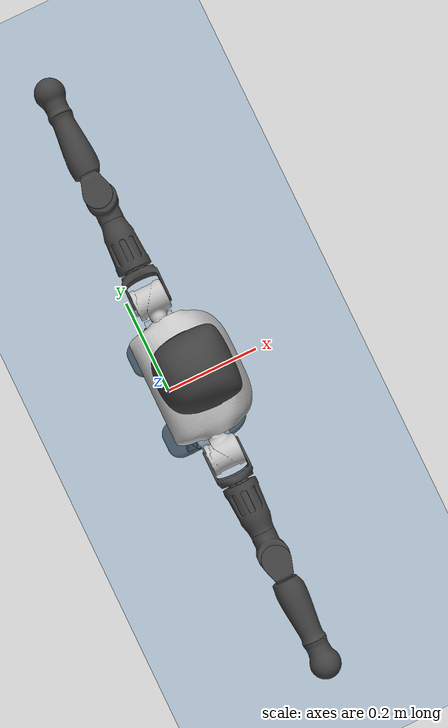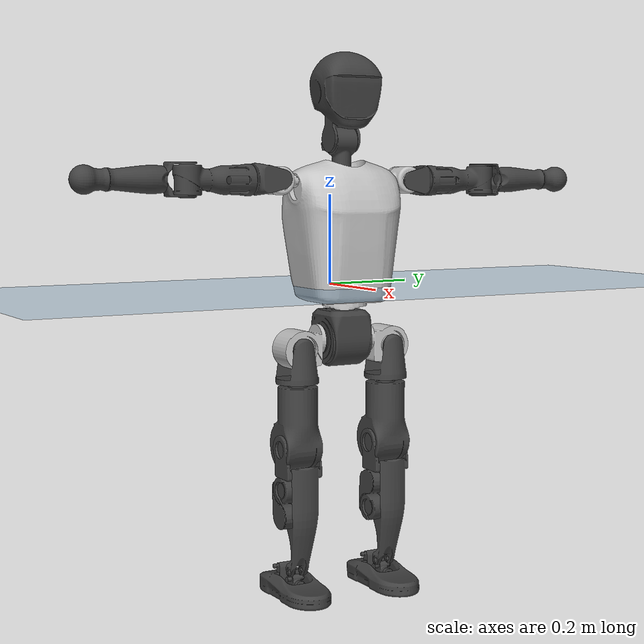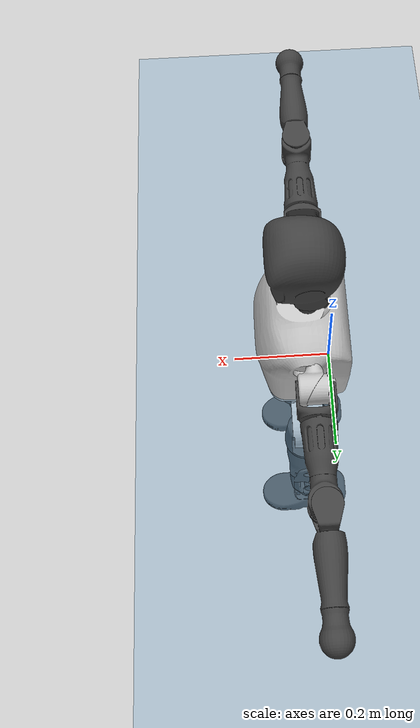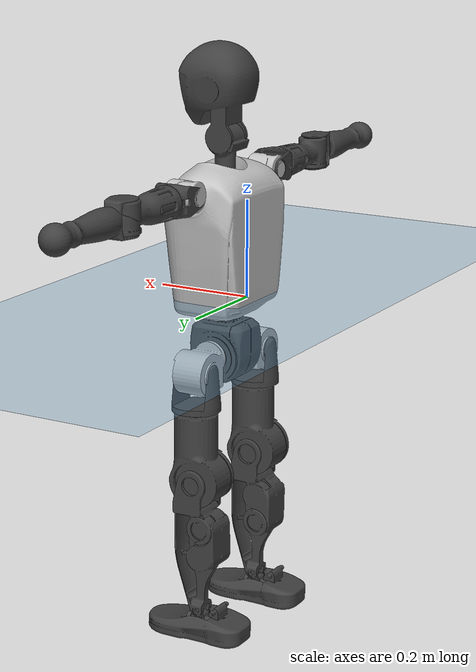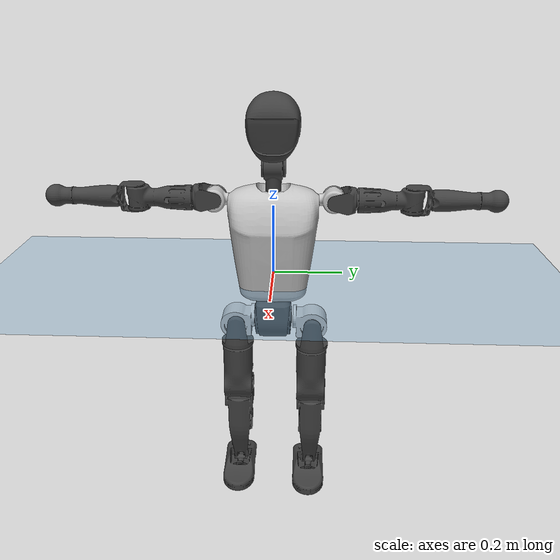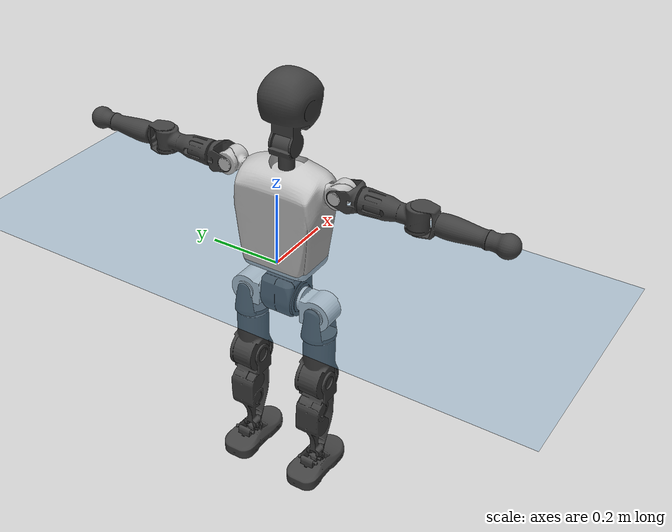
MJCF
<mujoco model="T1">
  <compiler angle="radian" assetdir="assets" balanceinertia="true" inertiafromgeom="false"/>

  <option timestep="0.005" density="1.2" viscosity="2e-05"/>

  <size nkey="1"/>

  <visual>
    <quality shadowsize="8192"/>
    <map shadowclip="0.5"/>
  </visual>

  <default>
    <default class="/">
      <joint armature="0.01" damping="0.01" frictionloss="0.1"/>
      <geom contype="0" conaffinity="0" group="1" solref="-1000 -80"/>
      <site size="0.01 0.005 0.005" group="5"/>
      <general forcelimited="true" biastype="affine" gainprm="25" biasprm="0 -25 -0.6"/>
      <default class="t1">
        <geom rgba="0.25 0.25 0.25 1"/>
        <default class="visual">
          <geom type="mesh" group="2"/>
        </default>
        <default class="collision">
          <geom group="3"/>
        </default>
        <default class="foot">
          <geom size="0.1115 0.05 0.015" type="box" condim="6" group="4" priority="1" solimp="0.015 1 0.015"/>
        </default>
        <default class="reward_collision_sphere">
          <geom group="5" rgba="1 0 0 1"/>
        </default>
      </default>
    </default>
  </default>

  <asset>
    <texture type="skybox" colorspace="auto" name="//unnamed_texture_0" builtin="gradient" rgb1="0.95 0.95 0.95" rgb2="0.95 0.95 0.95" width="100" height="600"/>
    <texture type="2d" colorspace="auto" name="texplane" builtin="checker" rgb1="0.345 0.575 0.748" rgb2="0.345 0.575 0.748" markrgb="1 1 1" width="512" height="512"/>
    <material name="MatPlane" class="/" texture="texplane" texuniform="true" texrepeat="2 2" specular="0.9"/>
    <mesh name="Trunk" class="/" file="Trunk.stl"/>
    <mesh name="H1" class="/" file="H1.stl"/>
    <mesh name="H2" class="/" file="H2.stl"/>
    <mesh name="AL1" class="/" file="AL1.stl"/>
    <mesh name="AL2" class="/" file="AL2.stl"/>
    <mesh name="AL3" class="/" file="AL3.stl"/>
    <mesh name="left_hand_link" class="/" file="left_hand_link.stl"/>
    <mesh name="AR1" class="/" file="AR1.stl"/>
    <mesh name="AR2" class="/" file="AR2.stl"/>
    <mesh name="AR3" class="/" file="AR3.stl"/>
    <mesh name="right_hand_link" class="/" file="right_hand_link.stl"/>
    <mesh name="Waist" class="/" file="Waist.stl"/>
    <mesh name="Hip_Pitch_Left" class="/" file="Hip_Pitch_Left.stl"/>
    <mesh name="Hip_Roll_Left" class="/" file="Hip_Roll_Left.stl"/>
    <mesh name="Hip_Yaw_Left" class="/" file="Hip_Yaw_Left.stl"/>
    <mesh name="Shank_Left" class="/" file="Shank_Left.stl"/>
    <mesh name="Ankle_Cross_Left" class="/" file="Ankle_Cross_Left.stl"/>
    <mesh name="left_foot_link" class="/" file="left_foot_link.stl"/>
    <mesh name="Hip_Pitch_Right" class="/" file="Hip_Pitch_Right.stl"/>
    <mesh name="Hip_Roll_Right" class="/" file="Hip_Roll_Right.stl"/>
    <mesh name="Hip_Yaw_Right" class="/" file="Hip_Yaw_Right.stl"/>
    <mesh name="Shank_Right" class="/" file="Shank_Right.stl"/>
    <mesh name="Ankle_Cross_Right" class="/" file="Ankle_Cross_Right.stl"/>
    <mesh name="right_foot_link" class="/" file="right_foot_link.stl"/>
  </asset>

  <worldbody>
    <geom name="floor" class="/" size="100 100 0.125" type="plane" group="0" material="MatPlane"/>
    <light name="toplight_shadow" class="/" pos="0 0 5" dir="0.0990148 0.0990148 -0.990148" type="directional" ambient="0.04 0.04 0.04" diffuse="0.55 0.55 0.55" specular="0.12 0.12 0.12"/>
    <light name="toplight_fill" class="/" pos="0 0 5" dir="0.0990148 0.0990148 -0.990148" type="directional" castshadow="false" ambient="0.04 0.04 0.04" diffuse="0.3 0.3 0.3" specular="0.08 0.08 0.08"/>
    <body name="trunk" childclass="t1" pos="-0.000525304 0.00283874 -0.00155702" quat="1 -7.28293e-05 0.00038963 -0.000335633">
      <inertial pos="0.0409192 -0.000236665 0.110165" quat="0.999957 -4.06774e-05 -0.00925351 0.000297325" mass="10.2062" diaginertia="0.0218206 0.102908 0.0693128"/>
      <joint name="//unnamed_joint_0" type="free" armature="0" damping="0" frictionloss="0"/>
      <geom name="//unnamed_geom_1" class="visual" rgba="0.76 0.76 0.76 1" mesh="Trunk"/>
      <geom name="//unnamed_geom_2" class="collision" size="0.071812 0.0957493 0.143624" pos="0.045512 0 0.126776" type="box"/>
      <geom name="//unnamed_geom_3" class="reward_collision_sphere" size="0.110112" pos="0.045512 0 0.105647"/>
      <geom name="//unnamed_geom_4" class="reward_collision_sphere" size="0.0143624" pos="0.045512 0.0898856 0"/>
      <geom name="//unnamed_geom_5" class="reward_collision_sphere" size="0.0143624" pos="0.045512 -0.0898856 0"/>
      <geom name="//unnamed_geom_6" class="reward_collision_sphere" size="0.0143624" pos="0.045512 0.11315 0.190165"/>
      <geom name="//unnamed_geom_7" class="reward_collision_sphere" size="0.0143624" pos="0.045512 -0.11315 0.190165"/>
      <site name="imu" pos="-0.00828626 0.00475905 -0.000956626" size="0.00957493"/>
      <camera name="track" pos="0 -2.11495 0" quat="0.707107 0.707107 0 0" mode="trackcom"/>
      <camera name="ego_camera" pos="0.0925411 0 0.443717" quat="-0.5 -0.5 0.5 0.5"/>
      <body name="H1" pos="0.0490834 -0.000276022 0.258397" quat="1 0.000123748 -0.000931138 -0.000334214">
        <inertial pos="0.00115723 0.000776088 0.0615681" quat="0.761321 -0.0153374 0.00429574 0.648179" mass="0.403547" diaginertia="6.27322e-05 0.000303583 0.000190434"/>
        <joint name="AAHead_yaw" pos="0 0 0" axis="-0.00413813 0.00297374 0.999987" stiffness="0.000902311" range="-1.58417 1.54713" armature="0.00910607" damping="0" frictionloss="0.105726"/>
        <geom name="//unnamed_geom_8" class="visual" mesh="H1"/>
        <body name="H2" pos="-0.00260703 0.000886481 0.0671747" quat="1 -0.000163761 2.82861e-05 0.000652468">
          <inertial pos="0.00480062 0.00070151 0.103778" quat="0.98833 0.106806 -0.0752251 -0.0783379" mass="0.548683" diaginertia="0.000496026 0.00247318 0.00228451"/>
          <joint name="Head_pitch" pos="0 0 0" axis="0.00491428 -0.999959 -0.00764528" range="-1.27774 0.381415" armature="0.0105871" damping="0.0133942" frictionloss="0.101908"/>
          <geom name="//unnamed_geom_9" class="visual" mesh="H2"/>
          <geom name="//unnamed_geom_10" class="collision" size="0.0765995" pos="0.00758533 0 0.116212"/>
          <geom name="//unnamed_geom_11" class="reward_collision_sphere" size="0.0861744" pos="0.0151707 0 0.105647"/>
        </body>
      </body>
      <body name="AL1" pos="0.0456806 0.115633 0.234419" quat="1 0.000356332 0.000186416 -0.000214418">
        <inertial pos="-0.00178145 0.0449832 -0.00289652" quat="0.493942 0.495206 -0.512742 0.497882" mass="0.44969" diaginertia="0.000336009 0.00166313 0.000376229"/>
        <joint name="Left_Shoulder_Pitch" pos="0 0 0" axis="-0.00147791 0.999989 0.00434559" range="-3.3048 1.21962" armature="0.00921467" damping="0.0234461" frictionloss="0.0849711"/>
        <geom name="//unnamed_geom_12" class="visual" rgba="0.76 0.76 0.76 1" mesh="AL1"/>
        <body name="AL2" pos="-0.000155142 0.0496002 -0.0014953" quat="1 0.00028635 -0.000807371 -0.000163422">
          <inertial pos="0.00100739 0.0406026 -0.00221601" quat="0.479851 0.510411 -0.488567 0.52012" mass="0.144968" diaginertia="9.9408e-05 0.000440337 0.000235082"/>
          <joint name="Left_Shoulder_Roll" pos="0 0 0" axis="-0.999983 0.0055132 -0.00167378" range="-1.56877 1.7259" armature="0.00934968" damping="0.00335131" frictionloss="0.0881302"/>
          <geom name="//unnamed_geom_13" class="visual" mesh="AL2"/>
          <body name="AL3" pos="-0.00100128 0.061657 -0.00010989" quat="1 0.000410459 0.000153669 -0.000228386">
            <inertial pos="-0.00068237 0.0901398 0.001988" quat="0.705801 0.708407 0.000118756 -0.00209557" mass="0.906304" diaginertia="0.00333165 0.0171451 0.000789748"/>
            <joint name="Left_Elbow_Pitch" pos="0 0 0" axis="-0.00547962 -0.999953 0.00799514" range="-2.27428 2.26509" armature="0.00904304" damping="0.0107926" frictionloss="0.106727"/>
            <geom name="//unnamed_geom_14" class="visual" mesh="AL3"/>
            <geom name="//unnamed_geom_15" class="collision" size="0.0287248 0.071812" pos="0 0.0528739 0" quat="0.707105 0.707108 0 0" type="cylinder"/>
            <geom name="//unnamed_geom_16" class="reward_collision_sphere" size="0.0344698"/>
            <body name="left_hand_link" pos="-0.00254723 0.154362 0.000994259" quat="1 0.000246571 0.00064736 -0.00065637">
              <inertial pos="5.75954e-05 0.11837 0.00341304" quat="0.708701 0.7055 0.0021688 0.00267782" mass="0.282735" diaginertia="0.00204343 0.011288 0.000286492"/>
              <joint name="Left_Elbow_Yaw" pos="0 0 0" axis="-0.00561724 0.00973515 0.999937" range="-2.41676 -0.0159838" armature="0.00938985" damping="0.00786415" frictionloss="0.109317"/>
              <geom name="//unnamed_geom_17" class="visual" mesh="left_hand_link"/>
              <geom name="//unnamed_geom_18" class="collision" size="0.0287248 0.0837807" pos="0 0.137472 0" quat="0.707105 0.707108 0 0" type="cylinder"/>
              <geom name="//unnamed_geom_19" class="reward_collision_sphere" size="0.0478747"/>
              <geom name="//unnamed_geom_20" class="reward_collision_sphere" size="0.0335123" pos="0 0.116323 0"/>
              <geom name="//unnamed_geom_21" class="reward_collision_sphere" size="0.0335123" pos="0 0.227358 0"/>
            </body>
          </body>
        </body>
      </body>
      <body name="AR1" pos="0.04622 -0.112991 0.234034" quat="0.999999 -0.000423776 0.00107299 -0.000280564">
        <inertial pos="-0.00121151 -0.0503156 0.000644185" quat="0.494901 0.503342 -0.502169 0.499545" mass="0.458673" diaginertia="0.000324734 0.0016786 0.000376032"/>
        <joint name="Right_Shoulder_Pitch" pos="0 0 0" axis="-0.00176155 -0.999935 0.0112412" range="-1.227 3.3657" armature="0.0094488" damping="0" frictionloss="0.091408"/>
        <geom name="//unnamed_geom_22" class="visual" rgba="0.76 0.76 0.76 1" mesh="AR1"/>
        <body name="AR2" pos="-0.00109526 -0.0471918 0.003106" quat="0.999999 0.000201713 0.000856066 0.00122732">
          <inertial pos="0.000525336 -0.0398501 0.00317567" quat="0.513725 0.488245 -0.509828 0.487626" mass="0.137156" diaginertia="0.000102417 0.00046091 0.000227072"/>
          <joint name="Right_Shoulder_Roll" pos="0 0 0" axis="-0.999877 -0.0130639 -0.00869108" stiffness="0.00319944" range="-1.71644 1.58298" armature="0.00981346" damping="0.020548" frictionloss="0.106216"/>
          <geom name="//unnamed_geom_23" class="visual" mesh="AR2"/>
          <body name="AR3" pos="0.000894967 -0.0614466 -0.00174894" quat="1 -0.000145296 0.000312594 -0.000410505">
            <inertial pos="-0.00146128 -0.0909391 0.000672568" quat="0.698491 0.715604 0.00393972 0.00236998" mass="0.905086" diaginertia="0.00309769 0.0162717 0.000819589"/>
            <joint name="Right_Elbow_Pitch" pos="0 0 0" axis="0.010808 0.999911 0.00776721" range="-2.27378 2.21074" armature="0.00819852" damping="0.0111762" frictionloss="0.100226"/>
            <geom name="//unnamed_geom_24" class="visual" mesh="AR3"/>
            <geom name="//unnamed_geom_25" class="collision" size="0.0287248 0.071812" pos="0 -0.0528739 0" quat="0.707105 0.707108 0 0" type="cylinder"/>
            <geom name="//unnamed_geom_26" class="reward_collision_sphere" size="0.0344698"/>
            <body name="right_hand_link" pos="4.95746e-05 -0.15568 0.00148587" quat="1 1.04421e-07 4.25692e-06 3.3684e-06">
              <inertial pos="-0.00279809 -0.11302 -0.000485478" quat="0.710468 0.703722 -0.00108594 0.0031894" mass="0.277858" diaginertia="0.00203185 0.0101278 0.000282638"/>
              <joint name="Right_Elbow_Yaw" pos="0 0 0" axis="-0.00222573 -0.00381903 0.99999" range="0.0191444 2.43403" armature="0.00880773" damping="0" frictionloss="0.0906638"/>
              <geom name="//unnamed_geom_27" class="visual" mesh="right_hand_link"/>
              <geom name="//unnamed_geom_28" class="collision" size="0.0287248 0.0837807" pos="0 -0.137472 0" quat="0.707105 0.707108 0 0" type="cylinder"/>
              <geom name="//unnamed_geom_29" class="reward_collision_sphere" size="0.0478747"/>
              <geom name="//unnamed_geom_30" class="reward_collision_sphere" size="0.0335123" pos="0 -0.116323 0"/>
              <geom name="//unnamed_geom_31" class="reward_collision_sphere" size="0.0335123" pos="0 -0.227358 0"/>
            </body>
          </body>
        </body>
      </body>
      <body name="Waist" pos="0.0487447 -0.000688075 -0.119278" quat="1 0.000372259 4.17965e-05 0.00032577">
        <inertial pos="0.00503234 -0.00127404 0.0101469" quat="0.983978 0.000978837 -0.178277 0.00161515" mass="2.26419" diaginertia="0.00130456 0.00719316 0.00604237"/>
        <joint name="Waist" pos="0 0 0" axis="-0.00294019 0.00205656 0.999994" range="-1.62457 1.62463" armature="0.00945603" damping="0.00120042" frictionloss="0.0935334"/>
        <geom name="//unnamed_geom_32" class="visual" mesh="Waist"/>
        <body name="Hip_Pitch_Left" pos="0.000743588 0.113167 0.00210243" quat="1 0.000337145 3.20831e-05 -0.00058498">
          <inertial pos="-0.00178261 -0.00816629 -0.0203171" quat="0.975439 0.219634 0.0167172 -0.00105745" mass="0.914766" diaginertia="0.000468433 0.00190145 0.00164289"/>
          <joint name="Left_Hip_Pitch" pos="0 0 0" axis="-0.00800533 0.999942 0.00720983" range="-1.75003 1.56477" armature="0.00947079" damping="0" frictionloss="0.0845592"/>
          <geom name="//unnamed_geom_33" class="visual" rgba="0.76 0.76 0.76 1" mesh="Hip_Pitch_Left"/>
          <body name="Hip_Roll_Left" pos="0.00374309 0.00125531 -0.0203928" quat="1 9.79999e-05 0.000158964 -4.73668e-05">
            <inertial pos="0.0022142 6.14218e-05 -0.0563988" quat="0.711739 -0.0159858 -0.00404216 0.702251" mass="0.354071" diaginertia="0.000452142 0.00214818 0.000696221"/>
            <joint name="Left_Hip_Roll" pos="0 0 0" axis="-0.999983 0.00478423 0.00323639" range="-1.51186 0.198701" armature="0.00964617" damping="0.02346" frictionloss="0.0824626"/>
            <geom name="//unnamed_geom_34" class="visual" mesh="Hip_Roll_Left"/>
            <geom name="//unnamed_geom_35" class="reward_collision_sphere" size="0.0526621"/>
            <body name="Hip_Yaw_Left" pos="-0.0012144 -0.000394968 -0.0860031" quat="1 5.07094e-05 1.57143e-05 1.19365e-05">
              <inertial pos="-0.00421061 -0.000969303 -0.0962652" quat="0.698927 -0.0421612 -0.0321528 0.713225" mass="1.83036" diaginertia="0.00649593 0.0339916 0.00341969"/>
              <joint name="Left_Hip_Yaw" pos="0 0 0" axis="0.0104001 -0.00357626 -0.99994" range="-1.00215 1.06175" armature="0.00821956" damping="0" frictionloss="0.0856306"/>
              <geom name="//unnamed_geom_36" class="visual" mesh="Hip_Yaw_Left"/>
              <geom name="//unnamed_geom_37" class="collision" size="0.0478747 0.0765995" type="cylinder"/>
              <body name="Shank_Left" pos="-0.0116988 0.00182275 -0.13994" quat="1 7.61056e-05 0.000541184 0.000325146">
                <inertial pos="-0.00183065 -0.000326395 -0.133614" quat="0.997797 0.0101 -0.025987 0.0602048" mass="1.57068" diaginertia="0.00927736 0.0477827 0.00249647"/>
                <joint name="Left_Knee_Pitch" pos="0 0 0" axis="0.0119657 0.999812 -0.0152527" range="-0.022032 2.33723" armature="0.0108927" damping="0.00389708" frictionloss="0.0868252"/>
                <geom name="//unnamed_geom_38" class="visual" mesh="Shank_Left"/>
                <geom name="//unnamed_geom_39" class="collision" size="0.0478747 0.071812" pos="0 0 -0.126776" type="cylinder"/>
                <geom name="//unnamed_geom_40" class="reward_collision_sphere" size="0.0622371"/>
                <body name="Ankle_Cross_Left" pos="-0.00143747 -0.00221643 -0.29541" quat="1 3.59159e-05 -3.8631e-06 -6.11735e-06">
                  <inertial pos="-0.00360641 0.000935241 -0.00941047" quat="0.447076 0.548939 0.553396 0.438795" mass="0.0665482" diaginertia="7.3118e-06 3.49419e-05 1.53059e-05"/>
                  <joint name="Left_Ankle_Pitch" pos="0 0 0" axis="-0.00876372 0.999941 -0.0064546" range="-0.85499 0.305511" armature="0.0096622" damping="0.0134389" frictionloss="0.0959563"/>
                  <geom name="//unnamed_geom_41" class="visual" mesh="Ankle_Cross_Left"/>
                  <body name="left_foot_link" pos="0.00217545 -0.000984445 -0.0122083" quat="0.999999 -0.000115438 -0.00114129 0.000594876">
                    <inertial pos="-0.000367967 0.00044354 -0.0087522" quat="-0.00139817 0.620738 -0.000767556 0.784017" mass="0.56686" diaginertia="0.000639446 0.00312284 0.00271697"/>
                    <joint name="Left_Ankle_Roll" pos="0 0 0" axis="-0.999853 0.0137795 0.0101949" stiffness="0.00282928" range="-0.49961 0.489009" armature="0.00973054" damping="0.0144257" frictionloss="0.0965899"/>
                    <geom name="//unnamed_geom_42" class="visual" mesh="left_foot_link"/>
                    <geom name="left_foot" class="foot" size="0.113041 0.050366 0.0160044" pos="0.00758533 0 -0.015847"/>
                    <geom name="//unnamed_geom_44" class="reward_collision_sphere" size="0.0497897" pos="0.00758533 0 -0.015847"/>
                    <geom name="//unnamed_geom_45" class="reward_collision_sphere" size="0.0287248" pos="0.0720607 -0.024322 -0.015847"/>
                    <geom name="//unnamed_geom_46" class="reward_collision_sphere" size="0.0287248" pos="-0.0530973 -0.024322 -0.015847"/>
                    <site name="left_foot" class="foot" pos="0.00758533 0 -0.015847" size="0.00957493"/>
                  </body>
                </body>
              </body>
            </body>
          </body>
        </body>
        <body name="Hip_Pitch_Right" pos="-0.00346295 -0.110183 0.00205093" quat="1 -0.000460674 -0.000567123 2.95087e-05">
          <inertial pos="0.00080985 0.00690985 -0.0181496" quat="0.975952 -0.217381 0.0150296 -0.00616101" mass="0.907072" diaginertia="0.000454421 0.00196514 0.00172024"/>
          <joint name="Right_Hip_Pitch" pos="0 0 0" axis="0.000480741 -0.999978 -0.00668847" range="-1.51396 1.75482" armature="0.00992712" damping="0.0225537" frictionloss="0.1022"/>
          <geom name="//unnamed_geom_47" class="visual" rgba="0.76 0.76 0.76 1" mesh="Hip_Pitch_Right"/>
          <body name="Hip_Roll_Right" pos="-0.00229546 0.00169784 -0.0184108" quat="1 -0.000143445 -0.000328303 -0.000104127">
            <inertial pos="-2.50256e-05 3.66835e-05 -0.0540889" quat="0.70711 -0.00595538 -0.00639037 0.70705" mass="0.337348" diaginertia="0.000433925 0.00205234 0.000690176"/>
            <joint name="Right_Hip_Roll" pos="0 0 0" axis="-0.999833 -0.00351795 0.017921" range="-0.143628 1.52858" armature="0.00985969" damping="0" frictionloss="0.107487"/>
            <geom name="//unnamed_geom_48" class="visual" mesh="Hip_Roll_Right"/>
            <geom name="//unnamed_geom_49" class="reward_collision_sphere" size="0.0526621"/>
            <body name="Hip_Yaw_Right" pos="0.00210617 0.000103676 -0.0844372" quat="1 -0.000234467 6.57509e-05 -0.000104358">
              <inertial pos="-0.00723365 0.000632444 -0.094371" quat="0.715369 -0.0295104 -0.0363064 0.697179" mass="1.83898" diaginertia="0.00655623 0.0337678 0.00328591"/>
              <joint name="Right_Hip_Yaw" pos="0 0 0" axis="-0.0112716 -0.0103732 -0.999883" range="-1.00123 0.996857" armature="0.00938951" damping="0.0188243" frictionloss="0.0947343"/>
              <geom name="//unnamed_geom_50" class="visual" mesh="Hip_Yaw_Right"/>
              <geom name="//unnamed_geom_51" class="collision" size="0.0478747 0.0765995" type="cylinder"/>
              <body name="Shank_Right" pos="-0.0103989 0.00122062 -0.140495" quat="1 0.000188663 -2.66321e-05 7.21065e-05">
                <inertial pos="-0.0050594 0.00163429 -0.132543" quat="0.999031 -0.000623709 -0.0293061 -0.0328218" mass="1.5989" diaginertia="0.00864799 0.0469775 0.00251196"/>
                <joint name="Right_Knee_Pitch" pos="0 0 0" axis="0.00786063 -0.999905 0.0113135" stiffness="0.0039646" range="-2.34297 -0.0422422" armature="0.00949799" damping="0.00982388" frictionloss="0.082359"/>
                <geom name="//unnamed_geom_52" class="visual" mesh="Shank_Right"/>
                <geom name="//unnamed_geom_53" class="collision" size="0.0478747 0.071812" pos="0 0 -0.126776" type="cylinder"/>
                <geom name="//unnamed_geom_54" class="reward_collision_sphere" size="0.0622371"/>
                <body name="Ankle_Cross_Right" pos="-0.00247975 -0.00312112 -0.298275" quat="1 -0.000263946 -0.000712996 0.000445808">
                  <inertial pos="-0.00158746 -0.002426 -0.00720005" quat="0.443054 0.547655 0.544774 0.45497" mass="0.0609628" diaginertia="7.21265e-06 3.37164e-05 1.46671e-05"/>
                  <joint name="Right_Ankle_Pitch" pos="0 0 0" axis="-0.00118095 -0.999999 0.000874594" range="-0.340302 0.925558" armature="0.00973561" damping="0.0138143" frictionloss="0.0983132"/>
                  <geom name="//unnamed_geom_55" class="visual" mesh="Ankle_Cross_Right"/>
                  <body name="right_foot_link" pos="-0.000639188 -0.00165597 -0.0105599" quat="1 0.000220044 -3.86435e-05 0.000273887">
                    <inertial pos="-0.000712897 -0.00219202 -0.00851547" quat="-0.000486175 0.620865 -0.00186825 0.783915" mass="0.604738" diaginertia="0.000679001 0.00305387 0.00284696"/>
                    <joint name="Right_Ankle_Roll" pos="0 0 0" axis="-0.999998 -0.0020516 0.0001018" range="-0.460633 0.425126" armature="0.00918746" damping="0" frictionloss="0.0984291"/>
                    <geom name="//unnamed_geom_56" class="visual" mesh="right_foot_link"/>
                    <geom name="right_foot" class="foot" size="0.101006 0.0448313 0.0148392" pos="0.00758533 0 -0.015847"/>
                    <geom name="//unnamed_geom_58" class="reward_collision_sphere" size="0.0382997"/>
                    <geom name="//unnamed_geom_59" class="reward_collision_sphere" size="0.0287248" pos="0.00758533 0 -0.015847"/>
                    <geom name="//unnamed_geom_60" class="reward_collision_sphere" size="0.0287248" pos="0.0720607 0.024322 -0.015847"/>
                    <geom name="//unnamed_geom_61" class="reward_collision_sphere" size="0.0287248" pos="-0.0530973 0.024322 -0.015847"/>
                    <site name="right_foot" class="foot" pos="0.00758533 0 -0.015847" size="0.00957493"/>
                  </body>
                </body>
              </body>
            </body>
          </body>
        </body>
      </body>
    </body>
  </worldbody>

  <contact>
    <pair class="/" geom1="floor" geom2="left_foot" name="//unnamed_contact_0"/>
    <pair class="/" geom1="floor" geom2="right_foot" name="//unnamed_contact_1"/>
  </contact>

  <actuator>
    <general name="AAHead_yaw" class="/" joint="AAHead_yaw" forcerange="-6.79403 6.79403" gainprm="25.5478" biasprm="0 -25.5478 -0.561179"/>
    <general name="Head_pitch" class="/" joint="Head_pitch" forcerange="-7.32542 7.32542" gainprm="25.5478" biasprm="0 -25.5478 -0.561179"/>
    <general name="Left_Shoulder_Pitch" class="/" joint="Left_Shoulder_Pitch" forcerange="-15.5729 15.5729" gainprm="25.5478" biasprm="0 -25.5478 -0.561179"/>
    <general name="Left_Shoulder_Roll" class="/" joint="Left_Shoulder_Roll" forcerange="-17.7137 17.7137" gainprm="25.5478" biasprm="0 -25.5478 -0.561179"/>
    <general name="Left_Elbow_Pitch" class="/" joint="Left_Elbow_Pitch" forcerange="-15.874 15.874" gainprm="25.5478" biasprm="0 -25.5478 -0.561179"/>
    <general name="Left_Elbow_Yaw" class="/" joint="Left_Elbow_Yaw" forcerange="-17.5013 17.5013" gainprm="25.5478" biasprm="0 -25.5478 -0.561179"/>
    <general name="Right_Shoulder_Pitch" class="/" joint="Right_Shoulder_Pitch" forcerange="-17.6567 17.6567" gainprm="25.5478" biasprm="0 -25.5478 -0.561179"/>
    <general name="Right_Shoulder_Roll" class="/" joint="Right_Shoulder_Roll" forcerange="-19.0658 19.0658" gainprm="25.5478" biasprm="0 -25.5478 -0.561179"/>
    <general name="Right_Elbow_Pitch" class="/" joint="Right_Elbow_Pitch" forcerange="-17.0745 17.0745" gainprm="25.5478" biasprm="0 -25.5478 -0.561179"/>
    <general name="Right_Elbow_Yaw" class="/" joint="Right_Elbow_Yaw" forcerange="-16.4543 16.4543" gainprm="25.5478" biasprm="0 -25.5478 -0.561179"/>
    <general name="Waist" class="/" joint="Waist" forcerange="-29.1128 29.1128" gainprm="25.5478" biasprm="0 -25.5478 -0.561179"/>
    <general name="Left_Hip_Pitch" class="/" joint="Left_Hip_Pitch" forcerange="-43.9225 43.9225" gainprm="25.5478" biasprm="0 -25.5478 -0.561179"/>
    <general name="Left_Hip_Roll" class="/" joint="Left_Hip_Roll" forcerange="-30.176 30.176" gainprm="25.5478" biasprm="0 -25.5478 -0.561179"/>
    <general name="Left_Hip_Yaw" class="/" joint="Left_Hip_Yaw" forcerange="-25.7712 25.7712" gainprm="25.5478" biasprm="0 -25.5478 -0.561179"/>
    <general name="Left_Knee_Pitch" class="/" joint="Left_Knee_Pitch" forcerange="-60.5663 60.5663" gainprm="25.5478" biasprm="0 -25.5478 -0.561179"/>
    <general name="Left_Ankle_Pitch" class="/" joint="Left_Ankle_Pitch" forcerange="-17.1218 17.1218" gainprm="25.5478" biasprm="0 -25.5478 -0.561179"/>
    <general name="Left_Ankle_Roll" class="/" joint="Left_Ankle_Roll" forcerange="-12.887 12.887" gainprm="25.5478" biasprm="0 -25.5478 -0.561179"/>
    <general name="Right_Hip_Pitch" class="/" joint="Right_Hip_Pitch" forcerange="-39.7182 39.7182" gainprm="25.5478" biasprm="0 -25.5478 -0.561179"/>
    <general name="Right_Hip_Roll" class="/" joint="Right_Hip_Roll" forcerange="-29.4297 29.4297" gainprm="25.5478" biasprm="0 -25.5478 -0.561179"/>
    <general name="Right_Hip_Yaw" class="/" joint="Right_Hip_Yaw" forcerange="-31.8809 31.8809" gainprm="25.5478" biasprm="0 -25.5478 -0.561179"/>
    <general name="Right_Knee_Pitch" class="/" joint="Right_Knee_Pitch" forcerange="-59.1528 59.1528" gainprm="25.5478" biasprm="0 -25.5478 -0.561179"/>
    <general name="Right_Ankle_Pitch" class="/" joint="Right_Ankle_Pitch" forcerange="-19.5866 19.5866" gainprm="25.5478" biasprm="0 -25.5478 -0.561179"/>
    <general name="Right_Ankle_Roll" class="/" joint="Right_Ankle_Roll" forcerange="-14.9534 14.9534" gainprm="25.5478" biasprm="0 -25.5478 -0.561179"/>
  </actuator>

  <sensor>
    <gyro site="imu" name="imu_angular_velocity"/>
    <velocimeter site="imu" name="imu_linear_velocity"/>
    <framelinvel objtype="site" objname="left_foot" name="left_foot_global_linear_velocity"/>
    <framelinvel objtype="site" objname="right_foot" name="right_foot_global_linear_velocity"/>
  </sensor>

  <keyframe>
    <key name="home" qpos="0 0 0.6385 1 0 0 0 0 0 0 1.4 0 -0.4 0 -1.4 0 0.4 0 -0.4 0 0 0.8 -0.4 0 0.4 0 0 -0.8 0.4 0"/>
  </keyframe>
</mujoco>
